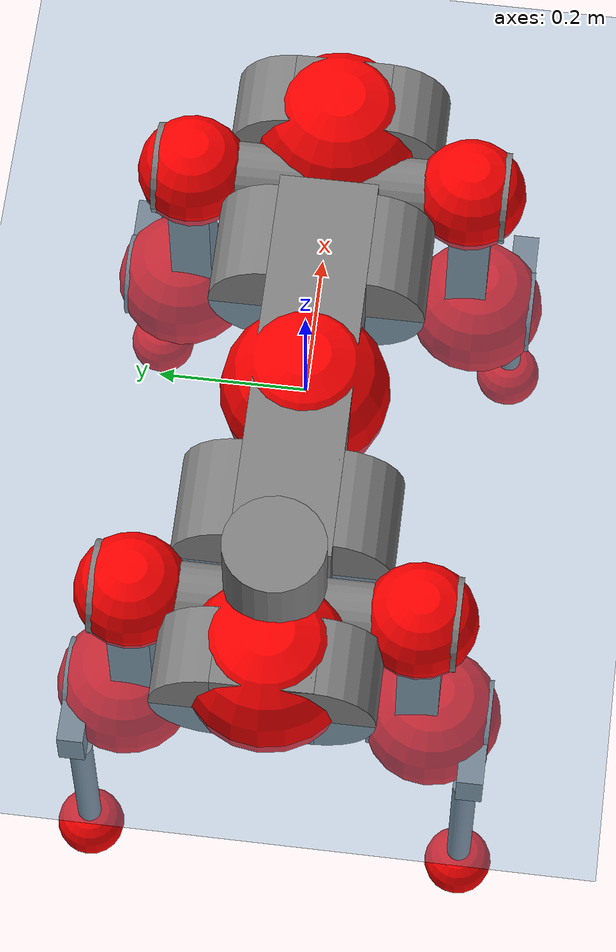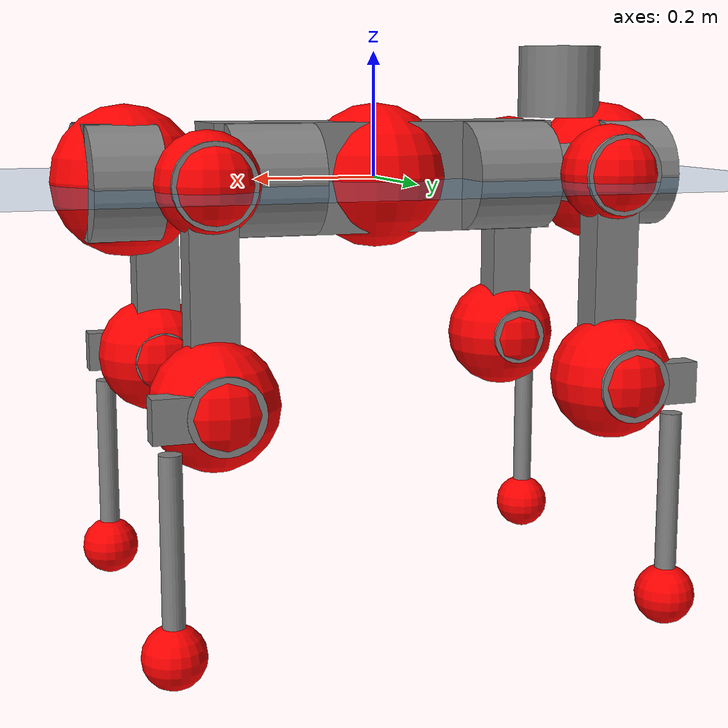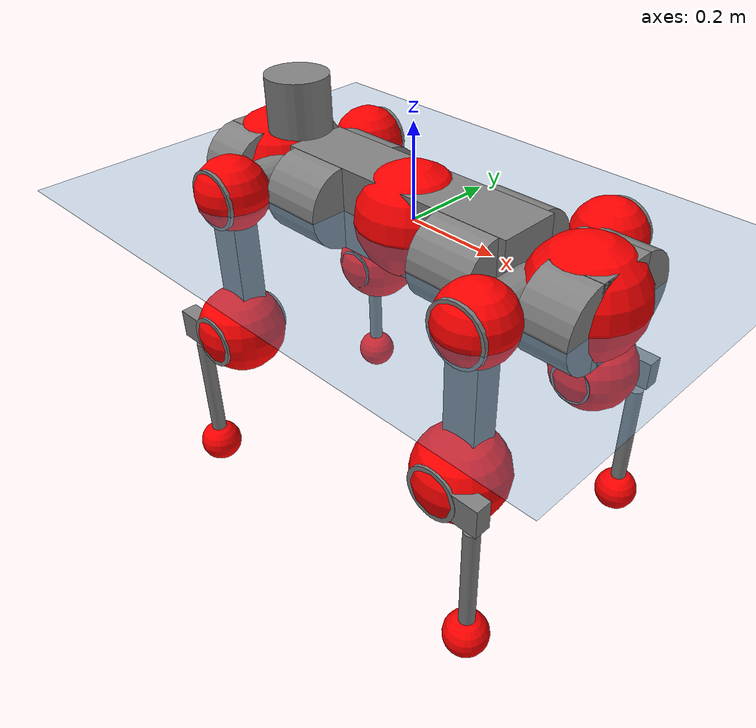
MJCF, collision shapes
<mujoco model="anymal_c">
  <compiler angle="radian" assetdir="assets" balanceinertia="true" inertiafromgeom="false"/>

  <option timestep="0.005" density="1.2" viscosity="2e-05"/>

  <size nkey="1"/>

  <visual>
    <quality shadowsize="8192"/>
    <map shadowclip="0.5"/>
  </visual>

  <default>
    <default class="/">
      <material specular="0" shininess="0.25"/>
      <geom contype="0" conaffinity="0" group="1" solref="-1000 -80"/>
      <site size="0.01 0.005 0.005" group="5"/>
      <general forcelimited="true" forcerange="-80 80" biastype="affine" gainprm="80" biasprm="0 -80 -2"/>
      <default class="anymal_c">
        <joint armature="0.01" damping="0.01" frictionloss="0.1"/>
        <default class="visual">
          <geom type="mesh" group="2"/>
          <default class="visual_zflip"/>
        </default>
        <default class="collision">
          <geom type="cylinder" group="3"/>
          <default class="foot">
            <geom size="0.03 0 0" type="sphere" condim="6" priority="1" friction="0.8 0.02 0.01" solimp="0.015 1 0.03"/>
          </default>
        </default>
      </default>
      <default class="reward_collision_sphere">
        <geom group="5" rgba="1 0 0 1"/>
      </default>
    </default>
  </default>

  <asset>
    <texture type="skybox" colorspace="auto" name="//unnamed_texture_0" builtin="gradient" rgb1="0.95 0.95 0.95" rgb2="0.95 0.95 0.95" width="100" height="600"/>
    <texture type="2d" colorspace="auto" name="texplane" builtin="checker" rgb1="0.345 0.575 0.748" rgb2="0.345 0.575 0.748" markrgb="1 1 1" width="512" height="512"/>
    <texture type="2d" colorspace="linear" name="base" file="base.png"/>
    <texture type="2d" colorspace="linear" name="top_shell" file="top_shell.png"/>
    <texture type="2d" colorspace="linear" name="bottom_shell" file="bottom_shell.png"/>
    <texture type="2d" colorspace="linear" name="remote" file="remote.png"/>
    <texture type="2d" colorspace="linear" name="hatch" file="hatch.png"/>
    <texture type="2d" colorspace="linear" name="handle" file="handle.png"/>
    <texture type="2d" colorspace="linear" name="face" file="face.png"/>
    <texture type="2d" colorspace="linear" name="battery" file="battery.png"/>
    <texture type="2d" colorspace="linear" name="lidar_cage" file="lidar_cage.png"/>
    <texture type="2d" colorspace="linear" name="depth_camera" file="depth_camera.png"/>
    <texture type="2d" colorspace="linear" name="wide_angle_camera" file="wide_angle_camera.png"/>
    <texture type="2d" colorspace="linear" name="lidar" file="lidar.png"/>
    <texture type="2d" colorspace="linear" name="drive" file="drive.png"/>
    <texture type="2d" colorspace="linear" name="hip_l" file="hip_l.png"/>
    <texture type="2d" colorspace="linear" name="shank_l" file="shank_l.png"/>
    <texture type="2d" colorspace="linear" name="foot" file="foot.png"/>
    <texture type="2d" colorspace="linear" name="thigh" file="thigh.png"/>
    <texture type="2d" colorspace="linear" name="shank_r" file="shank_r.png"/>
    <texture type="2d" colorspace="linear" name="hip_r" file="hip_r.png"/>
    <material name="MatPlane" class="/" texture="texplane" texuniform="true" texrepeat="2 2" specular="0.9" shininess="0.5"/>
    <material name="black_plastic" class="/" rgba="0.007 0.007 0.007 1"/>
    <material name="green" class="/" rgba="0.052 0.178 0.033 1"/>
    <material name="red" class="/" rgba="0.178 0.006 0.005 1"/>
    <material name="yellow" class="/" rgba="0.178 0.119 0.006 1"/>
    <material name="lwl" class="/" rgba="0.8 0.8 0.8 1"/>
    <material name="base" class="/" texture="base"/>
    <material name="top_shell" class="/" texture="top_shell"/>
    <material name="bottom_shell" class="/" texture="bottom_shell"/>
    <material name="hip_l" class="/" texture="hip_l"/>
    <material name="thigh" class="/" texture="thigh"/>
    <material name="shank_l" class="/" texture="shank_l"/>
    <material name="foot" class="/" texture="foot"/>
    <material name="hip_r" class="/" texture="hip_r"/>
    <material name="shank" class="/" texture="shank_r"/>
    <material name="hatch" class="/" texture="hatch"/>
    <material name="remote" class="/" texture="remote"/>
    <material name="handle" class="/" texture="handle"/>
    <material name="face" class="/" texture="face"/>
    <material name="depth_camera" class="/" texture="depth_camera"/>
    <material name="wide_angle_camera" class="/" texture="wide_angle_camera"/>
    <material name="battery" class="/" texture="battery"/>
    <material name="lidar_cage" class="/" texture="lidar_cage"/>
    <material name="lidar" class="/" texture="lidar"/>
    <material name="drive" class="/" texture="drive"/>
    <mesh name="base_0" class="/" file="base_0.obj"/>
    <mesh name="base_1" class="/" file="base_1.obj"/>
    <mesh name="base_2" class="/" file="base_2.obj"/>
    <mesh name="base_3" class="/" file="base_3.obj"/>
    <mesh name="base_4" class="/" file="base_4.obj"/>
    <mesh name="base_5" class="/" file="base_5.obj"/>
    <mesh name="top_shell" class="/" file="top_shell.obj"/>
    <mesh name="bottom_shell" class="/" file="bottom_shell.obj"/>
    <mesh name="remote" class="/" file="remote.obj"/>
    <mesh name="handle" class="/" file="handle.obj"/>
    <mesh name="face" class="/" file="face.obj"/>
    <mesh name="wide_angle_camera" class="/" file="wide_angle_camera.obj"/>
    <mesh name="depth_camera" class="/" file="depth_camera.obj"/>
    <mesh name="battery" class="/" file="battery.obj"/>
    <mesh name="lidar_cage" class="/" file="lidar_cage.obj"/>
    <mesh name="lidar" class="/" file="lidar.obj"/>
    <mesh name="drive" class="/" file="drive.obj"/>
    <mesh name="hip_l" class="/" file="hip_l.obj"/>
    <mesh name="thigh" class="/" file="thigh.obj"/>
    <mesh name="shank_l" class="/" file="shank_l.obj"/>
    <mesh name="foot" class="/" file="foot.obj"/>
    <mesh name="hip_r" class="/" file="hip_r.obj"/>
    <mesh name="hatch" class="/" file="hatch.obj"/>
    <mesh name="shank_r" class="/" file="shank_r.obj"/>
  </asset>

  <worldbody>
    <geom name="floor" class="/" size="100 100 0.125" type="plane" group="0" material="MatPlane"/>
    <light name="toplight_shadow" class="/" pos="0 0 5" dir="0.0990148 0.0990148 -0.990148" type="directional" ambient="0.04 0.04 0.04" diffuse="0.55 0.55 0.55" specular="0.12 0.12 0.12"/>
    <light name="toplight_fill" class="/" pos="0 0 5" dir="0.0990148 0.0990148 -0.990148" type="directional" castshadow="false" ambient="0.04 0.04 0.04" diffuse="0.3 0.3 0.3" specular="0.08 0.08 0.08"/>
    <body name="trunk" childclass="anymal_c" pos="-0.00248235 0.000168889 0.00269307" quat="0.999999 -0.00032828 -0.000126849 0.00121306">
      <inertial pos="0.00538741 0.000635235 0.0530203" quat="0.496813 0.49535 0.498313 0.509402" mass="16.9522" diaginertia="0.371533 0.353329 0.388131"/>
      <joint name="//unnamed_joint_0" type="free" armature="0" damping="0" frictionloss="0"/>
      <geom name="//unnamed_geom_1" class="visual" material="green" mesh="base_0"/>
      <geom name="//unnamed_geom_2" class="visual" material="yellow" mesh="base_1"/>
      <geom name="//unnamed_geom_3" class="visual" material="red" mesh="base_2"/>
      <geom name="//unnamed_geom_4" class="visual" material="black_plastic" mesh="base_3"/>
      <geom name="//unnamed_geom_5" class="visual" material="lwl" mesh="base_4"/>
      <geom name="//unnamed_geom_6" class="visual" material="base" mesh="base_5"/>
      <geom name="trunk_1" class="collision" size="0.281314 0.0679035 0.0873045" type="box"/>
      <geom name="trunk_2" class="collision" size="0.0873045 0.0703286" pos="0.195482 0.062435 0" quat="0.707107 0 0.707107 0"/>
      <geom name="trunk_3" class="collision" size="0.0873045 0.0703286" pos="-0.195482 0.062435 0" quat="0.707107 0 0.707107 0"/>
      <geom name="trunk_4" class="collision" size="0.0873045 0.0703286" pos="0.195482 -0.062435 0" quat="0.707107 0 0.707107 0"/>
      <geom name="trunk_5" class="collision" size="0.0873045 0.0703286" pos="-0.195482 -0.062435 0" quat="0.707107 0 0.707107 0"/>
      <geom name="//unnamed_geom_12" class="visual" material="top_shell" mesh="top_shell"/>
      <geom name="//unnamed_geom_13" class="visual" material="bottom_shell" mesh="bottom_shell"/>
      <geom name="//unnamed_geom_14" class="visual" material="remote" mesh="remote"/>
      <geom name="//unnamed_geom_15" class="visual" material="handle" mesh="handle"/>
      <geom name="//unnamed_geom_16" class="visual" pos="0.372538 0 0" quat="1 0 0 0" material="face" mesh="face"/>
      <geom name="trunk_6" class="collision" size="0.0533527 0.0679035 0.0873045" pos="0.421971 0 0" type="box"/>
      <geom name="//unnamed_geom_18" class="collision" size="0.0873045 0.0533527" pos="0.421971 0.062435 0" quat="0.707107 0 0.707107 0"/>
      <geom name="//unnamed_geom_19" class="collision" size="0.0873045 0.0533527" pos="0.421971 -0.062435 0" quat="0.707107 0 0.707107 0"/>
      <geom name="//unnamed_geom_20" class="visual" pos="0.414924 0 -0.0343653" quat="0.965926 0 0.258819 0" material="depth_camera" mesh="depth_camera"/>
      <geom name="//unnamed_geom_21" class="visual" pos="0.461067 0 0.0167582" material="wide_angle_camera" mesh="wide_angle_camera"/>
      <geom name="//unnamed_geom_22" class="visual_zflip" pos="-0.372538 0 0" quat="0 0 0 1" material="face" mesh="face"/>
      <geom name="trunk_7" class="collision" size="0.0533527 0.0679035 0.0873045" pos="-0.421971 0 0" quat="0 0 0 1" type="box"/>
      <geom name="//unnamed_geom_24" class="collision" size="0.0873045 0.0533527" pos="-0.421971 -0.062435 0" quat="0 -0.707107 0 0.707107"/>
      <geom name="//unnamed_geom_25" class="collision" size="0.0873045 0.0533527" pos="-0.421971 0.062435 0" quat="0 -0.707107 0 0.707107"/>
      <geom name="//unnamed_geom_26" class="visual" pos="-0.414924 0 -0.0343653" quat="0 -0.258819 0 0.965926" material="depth_camera" mesh="depth_camera"/>
      <geom name="//unnamed_geom_27" class="visual_zflip" pos="-0.461067 0 0.0167582" quat="0 0 0 1" material="wide_angle_camera" mesh="wide_angle_camera"/>
      <geom name="//unnamed_geom_28" class="visual" material="battery" mesh="battery"/>
      <geom name="//unnamed_geom_29" class="visual" pos="0 0.0681163 0.0308429" quat="0.683013 -0.183013 0.183013 0.683013" material="depth_camera" mesh="depth_camera"/>
      <geom name="//unnamed_geom_30" class="visual" pos="0 -0.0681163 0.0308429" quat="0.683013 0.183013 0.183013 -0.683013" material="depth_camera" mesh="depth_camera"/>
      <geom name="//unnamed_geom_31" class="visual" pos="-0.327151 0 0.0822799" quat="1 0 0 0" material="lidar_cage" mesh="lidar_cage"/>
      <geom name="trunk_8" class="collision" size="0.0679035 0.058203" pos="-0.327151 0 0.149447"/>
      <geom name="//unnamed_geom_33" class="visual" pos="-0.327151 -2.68615e-06 0.159186" quat="0.707107 0 0 -0.707107" material="lidar" mesh="lidar"/>
      <geom name="//unnamed_geom_34" class="visual" pos="0.26954 0.0928414 -3.92485e-09" quat="0.258819 0.965926 0 0" material="drive" mesh="drive"/>
      <geom name="//unnamed_geom_35" class="visual" pos="0.26954 -0.0928414 3.92485e-09" quat="0.258819 -0.965926 0 0" material="drive" mesh="drive"/>
      <geom name="//unnamed_geom_36" class="visual" pos="-0.26954 0.0928414 3.92485e-09" quat="0 0 0.965926 -0.258819" material="drive" mesh="drive"/>
      <geom name="//unnamed_geom_37" class="visual" pos="-0.26954 -0.0928414 -3.92485e-09" quat="0 0 -0.965926 -0.258819" material="drive" mesh="drive"/>
      <geom name="//unnamed_geom_38" class="visual" pos="0.104257 0 0.0817202" quat="1 0 0 0" material="hatch" mesh="hatch"/>
      <geom name="//unnamed_geom_39" class="reward_collision_sphere" size="0.116406"/>
      <geom name="//unnamed_geom_40" class="reward_collision_sphere" size="0.116406" pos="0.404445 0 0"/>
      <geom name="//unnamed_geom_41" class="reward_collision_sphere" size="0.116406" pos="-0.404445 0 0"/>
      <site name="imu" pos="0.216051 0.0080564 0.0591429" size="0.0097005"/>
      <camera name="track" pos="0 -1.78386 0" quat="0.707107 0.707107 0 0" mode="trackcom"/>
      <camera name="ego_camera" pos="0.404445 0 -0.0447782" quat="-0.5 -0.5 0.5 0.5"/>
      <body name="LF_HIP" pos="0.269172 0.0924415 -0.0010231" quat="0.25892 0.965899 0.000231139 0.000544179">
        <inertial pos="0.0508192 -0.0141283 -0.00943367" quat="-0.127582 0.708275 -0.135544 0.680953" mass="2.71311" diaginertia="0.00352949 0.00288295 0.006042"/>
        <joint name="LF_HAA" pos="0 0 0" axis="0.999997 -0.00108966 0.00202637" range="-0.72158 0.541408" armature="0.00944691" damping="0.0179594" frictionloss="0.0904362"/>
        <geom name="//unnamed_geom_42" class="visual" pos="0 -0.000230881 3.7922e-05" quat="0.258819 -0.965926 0 0" material="hip_l" mesh="hip_l"/>
        <geom name="//unnamed_geom_43" class="visual" pos="0.0538361 -0.0652247 -0.0393404" quat="0.183013 -0.683013 0.683013 0.183013" material="drive" mesh="drive"/>
        <geom name="//unnamed_geom_44" class="collision" size="0.0485025 0.0679035" pos="0.0538361 -0.0106673 -0.00772984" quat="-0.353553 -0.612372 0.612372 -0.353553"/>
        <body name="LF_THIGH" pos="0.0519926 -0.0664305 -0.0456137" quat="0.18265 -0.682823 0.683295 0.183029">
          <inertial pos="0.027539 0.000354962 -0.272902" quat="0.992969 -0.00524137 -0.080884 0.0862687" mass="2.75091" diaginertia="0.0175497 0.0173281 0.00756102"/>
          <joint name="LF_HFE" pos="0 0 0" axis="0.999963 -0.00846234 -0.00124932" stiffness="0.00105288" range="-3.15448 3.16755" armature="0.00849357" damping="0.00958342" frictionloss="0.0873172"/>
          <geom name="//unnamed_geom_45" class="visual" pos="0.000136033 2.14356e-07 0" quat="0.707107 0 0 -0.707107" material="thigh" mesh="thigh"/>
          <geom name="//unnamed_geom_46" class="collision" size="0.0630532 0.038802" pos="0.0359506 0 0" quat="0.5 0.5 -0.5 -0.5"/>
          <geom name="//unnamed_geom_47" class="collision" size="0.0363769 0.0291015 0.137082" pos="0.026963 0 -0.158195" quat="0.707107 0 0 -0.707107" type="box"/>
          <geom name="//unnamed_geom_48" class="visual" pos="0.0901462 0 -0.319045" quat="1 0 0 0" material="drive" mesh="drive"/>
          <geom name="//unnamed_geom_49" class="collision" size="0.0485025 0.0679035" pos="0.0272326 0 -0.319045" quat="0.707107 0 0.707107 0"/>
          <geom name="//unnamed_geom_50" class="reward_collision_sphere" size="0.077604" pos="0.0224691 0 0"/>
          <body name="LF_SHANK" pos="0.0892873 -0.000681448 -0.318692" quat="0.999999 0.00014299 0.00123569 -3.21373e-05">
            <inertial pos="0.00548448 -0.0523541 -0.0927379" quat="0.992861 -0.117264 -0.00321939 -0.0215888" mass="0.521129" diaginertia="0.00583618 0.00513372 0.00197461"/>
            <joint name="LF_KFE" pos="0 0 0" axis="0.999986 -0.000233926 -0.00524224" stiffness="0.00213625" range="-3.11096 3.12348" armature="0.010924" damping="0.0115462" frictionloss="0.0925196"/>
            <geom name="//unnamed_geom_51" class="visual" pos="4.43574e-05 0.000236516 0" quat="0.707107 0 0 -0.707107" material="shank_l" mesh="shank_l"/>
            <geom name="LF_kfe_act" class="collision" size="0.058203 0.019401" pos="0.0179753 0 0" quat="0.5 0.5 -0.5 -0.5"/>
            <geom name="//unnamed_geom_53" class="collision" size="0.0557769 0.0327392 0.0184309" pos="0.0179753 -0.051285 0" quat="0.5 0.5 -0.5 -0.5" type="box"/>
            <geom name="//unnamed_geom_54" class="visual" pos="0.0117289 -0.0783689 -0.378342" quat="0.382683 0 0 -0.92388" material="foot" mesh="foot"/>
            <geom name="LF_calf" class="collision" size="0.0169759 0.137021" pos="0.0117289 -0.0784451 -0.189171" quat="0.707107 0 0 -0.707107"/>
            <geom name="LF_foot" class="foot" size="0.0296628" pos="0.0117289 -0.0784451 -0.353154" quat="0.707107 0 0 -0.707107"/>
            <geom name="//unnamed_geom_57" class="reward_collision_sphere" size="0.097005" pos="-0.0449383 0 0"/>
            <geom name="//unnamed_geom_58" class="reward_collision_sphere" size="0.0485025" pos="0.0117289 -0.0784451 -0.353154"/>
            <site name="LF_foot" class="foot" pos="0.0117289 -0.0784451 -0.353154" quat="0.707107 0 0 -0.707107" size="0.0097005"/>
          </body>
        </body>
      </body>
      <body name="RF_HIP" pos="0.271401 -0.0928465 -0.00249346" quat="0.259084 -0.965855 0.00014563 -0.000402944">
        <inertial pos="0.0494006 0.0170636 -0.0107455" quat="0.13811 0.680812 0.138999 0.705762" mass="2.58519" diaginertia="0.00349713 0.00278647 0.00585775"/>
        <joint name="RF_HAA" pos="0 0 0" axis="1 -0.000148974 4.56329e-05" range="-0.463187 0.717234" armature="0.00925183" damping="0.00708333" frictionloss="0.11"/>
        <geom name="//unnamed_geom_59" class="visual" pos="0 0.000230879 3.79219e-05" quat="0.258819 0.965926 0 0" material="hip_r" mesh="hip_r"/>
        <geom name="//unnamed_geom_60" class="visual" pos="0.0538361 0.0652247 -0.0393404" quat="0.183013 0.683013 0.683013 -0.183013" material="drive" mesh="drive"/>
        <geom name="//unnamed_geom_61" class="collision" size="0.0485025 0.0679035" pos="0.0538361 0.0106673 -0.00772984" quat="-0.353553 0.612372 0.612372 0.353553"/>
        <body name="RF_THIGH" pos="0.0561254 0.0625002 -0.04643" quat="0.182945 0.682937 0.683047 -0.183235">
          <inertial pos="0.0261194 -0.00275049 -0.276963" quat="0.993748 -0.00851182 -0.0739489 0.0832115" mass="2.74608" diaginertia="0.0169576 0.0164902 0.00703548"/>
          <joint name="RF_HFE" pos="0 0 0" axis="1 -0.000114408 0.000251638" stiffness="0.000996334" range="-3.08973 3.10261" armature="0.00905026" damping="0.0082454" frictionloss="0.109648"/>
          <geom name="//unnamed_geom_62" class="visual" pos="0.000136033 2.14356e-07 0" quat="0.707107 0 0 -0.707107" material="thigh" mesh="thigh"/>
          <geom name="//unnamed_geom_63" class="collision" size="0.0630532 0.038802" pos="0.0359506 0 0" quat="0.5 0.5 0.5 0.5"/>
          <geom name="//unnamed_geom_64" class="collision" size="0.0363769 0.0291015 0.137082" pos="0.026963 0 -0.158195" quat="0.707107 0 0 0.707107" type="box"/>
          <geom name="//unnamed_geom_65" class="visual" pos="0.0901462 0 -0.319045" quat="1 0 0 0" material="drive" mesh="drive"/>
          <geom name="//unnamed_geom_66" class="collision" size="0.0485025 0.0679035" pos="0.0272326 0 -0.319045" quat="0.707107 0 0.707107 0"/>
          <geom name="//unnamed_geom_67" class="reward_collision_sphere" size="0.077604" pos="0.0224691 0 0"/>
          <body name="RF_SHANK" pos="0.0878762 -0.000232744 -0.319513" quat="1 0.000619225 0.000376505 -0.000685605">
            <inertial pos="0.00446863 0.054847 -0.0903566" quat="0.992132 0.123068 -0.00896135 0.0211772" mass="0.552364" diaginertia="0.0061837 0.00507512 0.00196675"/>
            <joint name="RF_KFE" pos="0 0 0" axis="0.99993 0.0100488 -0.00623913" stiffness="0.00749458" range="-3.10551 3.10213" armature="0.00982293" damping="0" frictionloss="0.109208"/>
            <geom name="//unnamed_geom_68" class="visual" pos="4.43572e-05 -0.000236516 0" quat="0.707107 0 0 0.707107" material="shank" mesh="shank_r"/>
            <geom name="RF_kfe_act" class="collision" size="0.058203 0.019401" pos="0.0179753 0 0" quat="0.5 0.5 0.5 0.5"/>
            <geom name="//unnamed_geom_70" class="collision" size="0.0557769 0.0327392 0.0184309" pos="0.0179753 0.051285 0" quat="0.5 0.5 0.5 0.5" type="box"/>
            <geom name="//unnamed_geom_71" class="visual" pos="0.0117289 0.0783689 -0.378342" quat="0.382683 0 0 0.92388" material="foot" mesh="foot"/>
            <geom name="RF_calf" class="collision" size="0.0169759 0.137021" pos="0.0117289 0.0784451 -0.189171" quat="0.707107 0 0 0.707107"/>
            <geom name="RF_foot" class="foot" size="0.0285377" pos="0.0117289 0.0784451 -0.353154" quat="0.707107 0 0 0.707107"/>
            <geom name="//unnamed_geom_74" class="reward_collision_sphere" size="0.097005" pos="-0.0449383 0 0"/>
            <geom name="//unnamed_geom_75" class="reward_collision_sphere" size="0.0485025" pos="0.0117289 0.0784451 -0.353154"/>
            <site name="RF_foot" class="foot" pos="0.0117289 0.0784451 -0.353154" quat="0.707107 0 0 0.707107" size="0.0097005"/>
          </body>
        </body>
      </body>
      <body name="LH_HIP" pos="-0.270181 0.0920423 0.00054219" quat="0.000359318 0.000260269 0.965873 -0.259014">
        <inertial pos="0.0509022 0.0147425 -0.00720798" quat="0.135358 0.679778 0.127351 0.70948" mass="2.48247" diaginertia="0.00321493 0.00263809 0.00550078"/>
        <joint name="LH_HAA" pos="0 0 0" axis="0.999999 0.000203567 0.00105694" range="-0.475155 0.777149" armature="0.00934141" damping="0.0142053" frictionloss="0.0974418"/>
        <geom name="//unnamed_geom_76" class="visual" pos="0 0.000230879 3.79219e-05" quat="-0.258819 -0.965926 0 0" material="hip_r" mesh="hip_r"/>
        <geom name="//unnamed_geom_77" class="visual" pos="0.0538361 0.0652247 -0.0393404" quat="0.183013 0.683013 0.683013 -0.183013" material="drive" mesh="drive"/>
        <geom name="//unnamed_geom_78" class="collision" size="0.0485025 0.0679035" pos="0.0538361 0.0106673 -0.00772984" quat="-0.353553 0.612372 0.612372 0.353553"/>
        <body name="LH_THIGH" pos="0.0539612 0.06308 -0.0444688" quat="0.183671 0.682309 0.683477 -0.183246">
          <inertial pos="0.0308439 0.00258383 -0.272889" quat="0.993166 -0.00319454 -0.0798715 0.0850443" mass="2.67385" diaginertia="0.0180862 0.0168745 0.00750035"/>
          <joint name="LH_HFE" pos="0 0 0" axis="0.999998 -0.000316601 0.0021073" range="-3.18709 3.11156" armature="0.0106874" damping="0.00233427" frictionloss="0.0949425"/>
          <geom name="//unnamed_geom_79" class="visual" pos="0.000136033 2.14356e-07 0" quat="0.707107 0 0 -0.707107" material="thigh" mesh="thigh"/>
          <geom name="//unnamed_geom_80" class="collision" size="0.0630532 0.038802" pos="0.0359506 0 0" quat="0.5 0.5 -0.5 -0.5"/>
          <geom name="//unnamed_geom_81" class="collision" size="0.0363769 0.0291015 0.137082" pos="0.026963 0 -0.158195" quat="0.707107 0 0 -0.707107" type="box"/>
          <geom name="//unnamed_geom_82" class="visual" pos="0.0901462 0 -0.319045" quat="1 0 0 0" material="drive" mesh="drive"/>
          <geom name="//unnamed_geom_83" class="collision" size="0.0485025 0.0679035" pos="0.0272326 0 -0.319045" quat="0.707107 0 0.707107 0"/>
          <geom name="//unnamed_geom_84" class="reward_collision_sphere" size="0.077604" pos="0.0224691 0 0"/>
          <body name="LH_SHANK" pos="0.0881361 0.00224511 -0.322738" quat="1 6.18696e-05 -0.000287308 -5.33083e-05">
            <inertial pos="0.00720895 0.053847 -0.0929095" quat="0.993783 0.107961 -0.000745009 0.0271793" mass="0.512166" diaginertia="0.0056239 0.00496675 0.00194971"/>
            <joint name="LH_KFE" pos="0 0 0" axis="0.999973 0.00486487 0.00554764" stiffness="0.00819999" range="-3.15058 3.11606" armature="0.00892385" damping="3.26693e-06" frictionloss="0.097451"/>
            <geom name="//unnamed_geom_85" class="visual" pos="4.43572e-05 -0.000236516 0" quat="-0.707107 0 0 -0.707107" material="shank" mesh="shank_r"/>
            <geom name="LH_kfe_act" class="collision" size="0.058203 0.019401" pos="0.0179753 0 0" quat="0.5 0.5 -0.5 -0.5"/>
            <geom name="//unnamed_geom_87" class="collision" size="0.0557769 0.0327392 0.0184309" pos="0.0179753 0.051285 0" quat="0.5 0.5 -0.5 -0.5" type="box"/>
            <geom name="//unnamed_geom_88" class="visual" pos="0.0117289 0.0783689 -0.378342" quat="-0.382683 0 0 -0.92388" material="foot" mesh="foot"/>
            <geom name="LH_calf" class="collision" size="0.0169759 0.137021" pos="0.0117289 0.0784451 -0.189171" quat="0.707107 0 0 -0.707107"/>
            <geom name="LH_foot" class="foot" size="0.0336814" pos="0.0117289 0.0784451 -0.353154" quat="0.707107 0 0 -0.707107"/>
            <geom name="//unnamed_geom_91" class="reward_collision_sphere" size="0.097005" pos="-0.0449383 0 0"/>
            <geom name="//unnamed_geom_92" class="reward_collision_sphere" size="0.0485025" pos="0.0117289 0.0784451 -0.353154"/>
            <site name="LH_foot" class="foot" pos="0.0117289 0.0784451 -0.353154" quat="0.707107 0 0 -0.707107" size="0.0097005"/>
          </body>
        </body>
      </body>
      <body name="RH_HIP" pos="-0.272655 -0.0920174 0.00253214" quat="-0.000207482 -9.86865e-05 -0.965952 -0.25872">
        <inertial pos="0.0490868 -0.0115759 -0.00730885" quat="-0.118517 0.715129 -0.147031 0.672997" mass="2.62569" diaginertia="0.00357098 0.00284271 0.00595809"/>
        <joint name="RH_HAA" pos="0 0 0" axis="0.99998 0.00419535 -0.00479702" range="-0.701864 0.535775" armature="0.00836377" damping="0.000140408" frictionloss="0.0971926"/>
        <geom name="//unnamed_geom_93" class="visual" pos="0 -0.000230881 3.7922e-05" quat="-0.258819 0.965926 0 0" material="hip_l" mesh="hip_l"/>
        <geom name="//unnamed_geom_94" class="visual" pos="0.0538361 -0.0652247 -0.0393404" quat="-0.183013 0.683013 -0.683013 -0.183013" material="drive" mesh="drive"/>
        <geom name="//unnamed_geom_95" class="collision" size="0.0485025 0.0679035" pos="0.0538361 -0.0106673 -0.00772984" quat="0.353553 0.612372 -0.612372 0.353553"/>
        <body name="RH_THIGH" pos="0.0515552 -0.0622086 -0.045591" quat="-0.183097 0.683028 -0.682989 -0.182958">
          <inertial pos="0.0274641 0.00184725 -0.272493" quat="0.993131 -0.00402172 -0.0806753 0.0846488" mass="2.72344" diaginertia="0.0172503 0.0164665 0.00710172"/>
          <joint name="RH_HFE" pos="0 0 0" axis="0.999942 0.00199419 -0.0106143" range="-3.10433 3.0946" armature="0.00882834" damping="0.0176306" frictionloss="0.0988878"/>
          <geom name="//unnamed_geom_96" class="visual" pos="0.000136033 2.14356e-07 0" quat="0.707107 0 0 -0.707107" material="thigh" mesh="thigh"/>
          <geom name="//unnamed_geom_97" class="collision" size="0.0630532 0.038802" pos="0.0359506 0 0" quat="0.5 0.5 0.5 0.5"/>
          <geom name="//unnamed_geom_98" class="collision" size="0.0363769 0.0291015 0.137082" pos="0.026963 0 -0.158195" quat="0.707107 0 0 0.707107" type="box"/>
          <geom name="//unnamed_geom_99" class="visual" pos="0.0901462 0 -0.319045" quat="1 0 0 0" material="drive" mesh="drive"/>
          <geom name="//unnamed_geom_100" class="collision" size="0.0485025 0.0679035" pos="0.0272326 0 -0.319045" quat="0.707107 0 0.707107 0"/>
          <geom name="//unnamed_geom_101" class="reward_collision_sphere" size="0.077604" pos="0.0224691 0 0"/>
          <body name="RH_SHANK" pos="0.0914168 -3.72376e-05 -0.321543" quat="1 0.00034571 -0.000632641 0.000141951">
            <inertial pos="0.00501052 -0.0570833 -0.0878011" quat="0.992747 -0.117209 -0.00291945 -0.026578" mass="0.52649" diaginertia="0.00584773 0.00520673 0.00191453"/>
            <joint name="RH_KFE" pos="0 0 0" axis="0.99986 -0.0102378 -0.0132714" stiffness="0.00419921" range="-3.13654 3.11619" armature="0.00979102" damping="0" frictionloss="0.109297"/>
            <geom name="//unnamed_geom_102" class="visual" pos="4.43574e-05 0.000236516 0" quat="0.707107 0 0 -0.707107" material="shank_l" mesh="shank_l"/>
            <geom name="RH_kfe_act" class="collision" size="0.058203 0.019401" pos="0.0179753 0 0" quat="0.5 0.5 0.5 0.5"/>
            <geom name="//unnamed_geom_104" class="collision" size="0.0557769 0.0327392 0.0184309" pos="0.0179753 -0.051285 0" quat="0.5 0.5 0.5 0.5" type="box"/>
            <geom name="//unnamed_geom_105" class="visual" pos="0.0117289 -0.0783689 -0.378342" quat="0.382683 0 0 -0.92388" material="foot" mesh="foot"/>
            <geom name="RH_calf" class="collision" size="0.0169759 0.137021" pos="0.0117289 -0.0784451 -0.189171" quat="0.707107 0 0 0.707107"/>
            <geom name="RH_foot" class="foot" size="0.0270118" pos="0.0117289 -0.0784451 -0.353154" quat="0.707107 0 0 0.707107"/>
            <geom name="//unnamed_geom_108" class="reward_collision_sphere" size="0.097005" pos="-0.0449383 0 0"/>
            <geom name="//unnamed_geom_109" class="reward_collision_sphere" size="0.0485025" pos="0.0117289 -0.0784451 -0.353154"/>
            <site name="RH_foot" class="foot" pos="0.0117289 -0.0784451 -0.353154" quat="0.707107 0 0 0.707107" size="0.0097005"/>
          </body>
        </body>
      </body>
    </body>
  </worldbody>

  <contact>
    <pair class="/" geom1="floor" geom2="LF_foot" name="//unnamed_contact_0"/>
    <pair class="/" geom1="floor" geom2="RF_foot" name="//unnamed_contact_1"/>
    <pair class="/" geom1="floor" geom2="LH_foot" name="//unnamed_contact_2"/>
    <pair class="/" geom1="floor" geom2="RH_foot" name="//unnamed_contact_3"/>
  </contact>

  <actuator>
    <general name="LF_HAA" class="/" joint="LF_HAA" forcerange="-76.5084 76.5084" gainprm="73.506" biasprm="0 -73.506 -1.82633"/>
    <general name="LF_HFE" class="/" joint="LF_HFE" forcerange="-83.2122 83.2122" gainprm="73.506" biasprm="0 -73.506 -1.82633"/>
    <general name="LF_KFE" class="/" joint="LF_KFE" forcerange="-70.225 70.225" gainprm="73.506" biasprm="0 -73.506 -1.82633"/>
    <general name="RF_HAA" class="/" joint="RF_HAA" forcerange="-76.8163 76.8163" gainprm="73.506" biasprm="0 -73.506 -1.82633"/>
    <general name="RF_HFE" class="/" joint="RF_HFE" forcerange="-81.2158 81.2158" gainprm="73.506" biasprm="0 -73.506 -1.82633"/>
    <general name="RF_KFE" class="/" joint="RF_KFE" forcerange="-72.129 72.129" gainprm="73.506" biasprm="0 -73.506 -1.82633"/>
    <general name="LH_HAA" class="/" joint="LH_HAA" forcerange="-77.5507 77.5507" gainprm="73.506" biasprm="0 -73.506 -1.82633"/>
    <general name="LH_HFE" class="/" joint="LH_HFE" forcerange="-75.4216 75.4216" gainprm="73.506" biasprm="0 -73.506 -1.82633"/>
    <general name="LH_KFE" class="/" joint="LH_KFE" forcerange="-86.6305 86.6305" gainprm="73.506" biasprm="0 -73.506 -1.82633"/>
    <general name="RH_HAA" class="/" joint="RH_HAA" forcerange="-76.2927 76.2927" gainprm="73.506" biasprm="0 -73.506 -1.82633"/>
    <general name="RH_HFE" class="/" joint="RH_HFE" forcerange="-76.2793 76.2793" gainprm="73.506" biasprm="0 -73.506 -1.82633"/>
    <general name="RH_KFE" class="/" joint="RH_KFE" forcerange="-84.5889 84.5889" gainprm="73.506" biasprm="0 -73.506 -1.82633"/>
  </actuator>

  <sensor>
    <gyro site="imu" name="imu_angular_velocity"/>
    <velocimeter site="imu" name="imu_linear_velocity"/>
    <framelinvel objtype="site" objname="LF_foot" name="LF_foot_global_linear_velocity"/>
    <framelinvel objtype="site" objname="RF_foot" name="RF_foot_global_linear_velocity"/>
    <framelinvel objtype="site" objname="LH_foot" name="LH_foot_global_linear_velocity"/>
    <framelinvel objtype="site" objname="RH_foot" name="RH_foot_global_linear_velocity"/>
  </sensor>

  <keyframe>
    <key name="home" qpos="0 0 0.55 1 0 0 0 0 0.4 -0.8 0 -0.4 0.8 0 -0.4 0.8 0 0.4 -0.8"/>
  </keyframe>
</mujoco>
